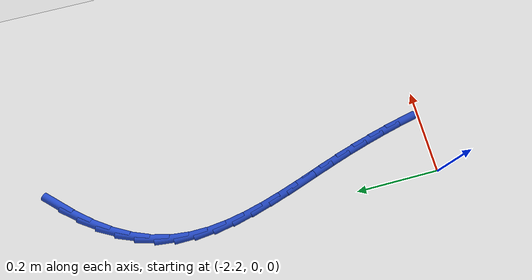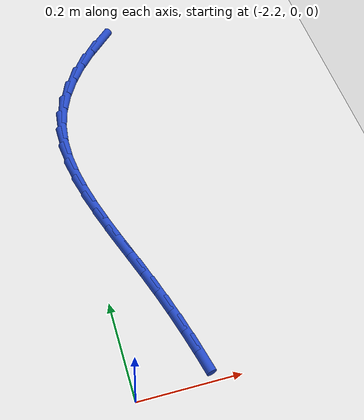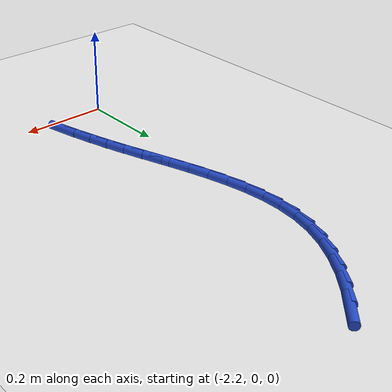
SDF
<sdf version="1.6">
 <world name="default">
  <model name="ground_plane">
   <static>1</static>
   <link name="link">
    <collision name="collision">
     <geometry><plane><normal>0 0 1</normal><size>100 100</size></plane></geometry>
     <surface><friction><ode><mu>100</mu><mu2>50</mu2></ode></friction></surface>
    </collision>
    <visual name="visual">
     <cast_shadows>0</cast_shadows>
     <geometry><plane><normal>0 0 1</normal><size>100 100</size></plane></geometry>
     <material>
      <script><uri>file://media/materials/scripts/gazebo.material</uri><name>Gazebo/WhiteGlow</name></script>
     </material>
    </visual>
   </link>
  </model>
  <model name="line">
   <link name="link_61">
    <pose>-2.0532760310942932 0.8847244399445371 0.01 0 1.57 0.7938596944100431</pose>
    <collision name="collision">
     <geometry><cylinder><radius>0.01</radius><length>0.08</length></cylinder></geometry>
    </collision>
    <visual name="visual">
     <material>
      <script><name>Gazebo/Blue</name><uri>file://media/materials/scripts/gazebo.material</uri></script>
     </material>
     <geometry><cylinder><radius>0.01</radius><length>0.08</length></cylinder></geometry>
    </visual>
   </link>
   <link name="link_62">
    <pose>-2.088034660674298 0.8493725539036686 0.01 0 1.57 0.8754050287475194</pose>
    <collision name="collision">
     <geometry><cylinder><radius>0.01</radius><length>0.08</length></cylinder></geometry>
    </collision>
    <visual name="visual">
     <material>
      <script><name>Gazebo/Blue</name><uri>file://media/materials/scripts/gazebo.material</uri></script>
     </material>
     <geometry><cylinder><radius>0.01</radius><length>0.08</length></cylinder></geometry>
    </visual>
   </link>
   <link name="link_63">
    <pose>-2.11920716276319 0.8120151819452643 0.01 0 1.57 0.9670237591008793</pose>
    <collision name="collision">
     <geometry><cylinder><radius>0.01</radius><length>0.08</length></cylinder></geometry>
    </collision>
    <visual name="visual">
     <material>
      <script><name>Gazebo/Blue</name><uri>file://media/materials/scripts/gazebo.material</uri></script>
     </material>
     <geometry><cylinder><radius>0.01</radius><length>0.08</length></cylinder></geometry>
    </visual>
   </link>
   <link name="link_64">
    <pose>-2.146211584038072 0.772860717628751 0.01 0 1.57 1.0708663506252771</pose>
    <collision name="collision">
     <geometry><cylinder><radius>0.01</radius><length>0.08</length></cylinder></geometry>
    </collision>
    <visual name="visual">
     <material>
      <script><name>Gazebo/Blue</name><uri>file://media/materials/scripts/gazebo.material</uri></script>
     </material>
     <geometry><cylinder><radius>0.01</radius><length>0.08</length></cylinder></geometry>
    </visual>
   </link>
   <link name="link_65">
    <pose>-2.1684659711760483 0.7321175545135546 0.01 0 1.57 1.188796624749201</pose>
    <collision name="collision">
     <geometry><cylinder><radius>0.01</radius><length>0.08</length></cylinder></geometry>
    </collision>
    <visual name="visual">
     <material>
      <script><name>Gazebo/Blue</name><uri>file://media/materials/scripts/gazebo.material</uri></script>
     </material>
     <geometry><cylinder><radius>0.01</radius><length>0.08</length></cylinder></geometry>
    </visual>
   </link>
   <link name="link_66">
    <pose>-2.185388370854223 0.6899940861591018 0.01 0 1.57 1.3217451869023198</pose>
    <collision name="collision">
     <geometry><cylinder><radius>0.01</radius><length>0.08</length></cylinder></geometry>
    </collision>
    <visual name="visual">
     <material>
      <script><name>Gazebo/Blue</name><uri>file://media/materials/scripts/gazebo.material</uri></script>
     </material>
     <geometry><cylinder><radius>0.01</radius><length>0.08</length></cylinder></geometry>
    </visual>
   </link>
   <link name="link_67">
    <pose>-2.1963997730639138 0.6466986045191268 0.01 0 1.57 1.4596288669667246</pose>
    <collision name="collision">
     <geometry><cylinder><radius>0.01</radius><length>0.08</length></cylinder></geometry>
    </collision>
    <visual name="visual">
     <material>
      <script><name>Gazebo/Blue</name><uri>file://media/materials/scripts/gazebo.material</uri></script>
     </material>
     <geometry><cylinder><radius>0.01</radius><length>0.08</length></cylinder></geometry>
    </visual>
   </link>
   <link name="link_68">
    <pose>-2.201341946600214 0.6024248759076204 0.01 0 1.57 -1.5612426031239126</pose>
    <collision name="collision">
     <geometry><cylinder><radius>0.01</radius><length>0.08</length></cylinder></geometry>
    </collision>
    <visual name="visual">
     <material>
      <script><name>Gazebo/Blue</name><uri>file://media/materials/scripts/gazebo.material</uri></script>
     </material>
     <geometry><cylinder><radius>0.01</radius><length>0.08</length></cylinder></geometry>
    </visual>
   </link>
   <link name="link_69">
    <pose>-2.2009111779915496 0.5573371679646039 0.01 0 1.57 -1.461834718123281</pose>
    <collision name="collision">
     <geometry><cylinder><radius>0.01</radius><length>0.08</length></cylinder></geometry>
    </collision>
    <visual name="visual">
     <material>
      <script><name>Gazebo/Blue</name><uri>file://media/materials/scripts/gazebo.material</uri></script>
     </material>
     <geometry><cylinder><radius>0.01</radius><length>0.08</length></cylinder></geometry>
    </visual>
   </link>
   <link name="link_70">
    <pose>-2.195907346937747 0.5115961722063144 0.01 0 1.57 -1.383188211248397</pose>
    <collision name="collision">
     <geometry><cylinder><radius>0.01</radius><length>0.08</length></cylinder></geometry>
    </collision>
    <visual name="visual">
     <material>
      <script><name>Gazebo/Blue</name><uri>file://media/materials/scripts/gazebo.material</uri></script>
     </material>
     <geometry><cylinder><radius>0.01</radius><length>0.08</length></cylinder></geometry>
    </visual>
   </link>
   <link name="link_71">
    <pose>-2.1871303331386307 0.46536258014898896 0.01 0 1.57 -1.3236169426747946</pose>
    <collision name="collision">
     <geometry><cylinder><radius>0.01</radius><length>0.08</length></cylinder></geometry>
    </collision>
    <visual name="visual">
     <material>
      <script><name>Gazebo/Blue</name><uri>file://media/materials/scripts/gazebo.material</uri></script>
     </material>
     <geometry><cylinder><radius>0.01</radius><length>0.08</length></cylinder></geometry>
    </visual>
   </link>
   <link name="link_72">
    <pose>-2.175380016294028 0.41879708330886595 0.01 0 1.57 -1.2812500685947474</pose>
    <collision name="collision">
     <geometry><cylinder><radius>0.01</radius><length>0.08</length></cylinder></geometry>
    </collision>
    <visual name="visual">
     <material>
      <script><name>Gazebo/Blue</name><uri>file://media/materials/scripts/gazebo.material</uri></script>
     </material>
     <geometry><cylinder><radius>0.01</radius><length>0.08</length></cylinder></geometry>
    </visual>
   </link>
   <link name="link_73">
    <pose>-2.161456276103763 0.37206037320218194 0.01 0 1.57 -1.2545451766551847</pose>
    <collision name="collision">
     <geometry><cylinder><radius>0.01</radius><length>0.08</length></cylinder></geometry>
    </collision>
    <visual name="visual">
     <material>
      <script><name>Gazebo/Blue</name><uri>file://media/materials/scripts/gazebo.material</uri></script>
     </material>
     <geometry><cylinder><radius>0.01</radius><length>0.08</length></cylinder></geometry>
    </visual>
   </link>
   <link name="link_74">
    <pose>-2.146158992267662 0.3253131413451754 0.01 0 1.57 -1.2425203136314507</pose>
    <collision name="collision">
     <geometry><cylinder><radius>0.01</radius><length>0.08</length></cylinder></geometry>
    </collision>
    <visual name="visual">
     <material>
      <script><name>Gazebo/Blue</name><uri>file://media/materials/scripts/gazebo.material</uri></script>
     </material>
     <geometry><cylinder><radius>0.01</radius><length>0.08</length></cylinder></geometry>
    </visual>
   </link>
   <link name="link_75">
    <pose>-2.1302880444855514 0.27871607925408337 0.01 0 1.57 -1.244851743325411</pose>
    <collision name="collision">
     <geometry><cylinder><radius>0.01</radius><length>0.08</length></cylinder></geometry>
    </collision>
    <visual name="visual">
     <material>
      <script><name>Gazebo/Blue</name><uri>file://media/materials/scripts/gazebo.material</uri></script>
     </material>
     <geometry><cylinder><radius>0.01</radius><length>0.08</length></cylinder></geometry>
    </visual>
   </link>
   <link name="link_76">
    <pose>-2.1146433124572557 0.23242987844514296 0.01 0 1.57 -1.2614977414646271</pose>
    <collision name="collision">
     <geometry><cylinder><radius>0.01</radius><length>0.08</length></cylinder></geometry>
    </collision>
    <visual name="visual">
     <material>
      <script><name>Gazebo/Blue</name><uri>file://media/materials/scripts/gazebo.material</uri></script>
     </material>
     <geometry><cylinder><radius>0.01</radius><length>0.08</length></cylinder></geometry>
    </visual>
   </link>
   <link name="link_77">
    <pose>-2.100000878461082 0.18660845041135654 0.01 0 1.57 -1.2848748387831703</pose>
    <collision name="collision">
     <geometry><cylinder><radius>0.01</radius><length>0.08</length></cylinder></geometry>
    </collision>
    <visual name="visual">
     <material>
      <script><name>Gazebo/Blue</name><uri>file://media/materials/scripts/gazebo.material</uri></script>
     </material>
     <geometry><cylinder><radius>0.01</radius><length>0.08</length></cylinder></geometry>
    </visual>
   </link>
   <link name="link_78">
    <pose>-2.0866735326945123 0.14127371204830438 0.01 0 1.57 -1.3073966854616528</pose>
    <collision name="collision">
     <geometry><cylinder><radius>0.01</radius><length>0.08</length></cylinder></geometry>
    </collision>
    <visual name="visual">
     <material>
      <script><name>Gazebo/Blue</name><uri>file://media/materials/scripts/gazebo.material</uri></script>
     </material>
     <geometry><cylinder><radius>0.01</radius><length>0.08</length></cylinder></geometry>
    </visual>
   </link>
   <link name="link_79">
    <pose>-2.074553152038147 0.0963276596094735 0.01 0 1.57 -1.3285190304848364</pose>
    <collision name="collision">
     <geometry><cylinder><radius>0.01</radius><length>0.08</length></cylinder></geometry>
    </collision>
    <visual name="visual">
     <material>
      <script><name>Gazebo/Blue</name><uri>file://media/materials/scripts/gazebo.material</uri></script>
     </material>
     <geometry><cylinder><radius>0.01</radius><length>0.08</length></cylinder></geometry>
    </visual>
   </link>
   <link name="link_80">
    <pose>-2.063516316162767 0.05166793108466314 0.01 0 1.57 -1.3479915256226258</pose>
    <collision name="collision">
     <geometry><cylinder><radius>0.01</radius><length>0.08</length></cylinder></geometry>
    </collision>
    <visual name="visual">
     <material>
      <script><name>Gazebo/Blue</name><uri>file://media/materials/scripts/gazebo.material</uri></script>
     </material>
     <geometry><cylinder><radius>0.01</radius><length>0.08</length></cylinder></geometry>
    </visual>
   </link>
  </model>
 </world>
</sdf>
